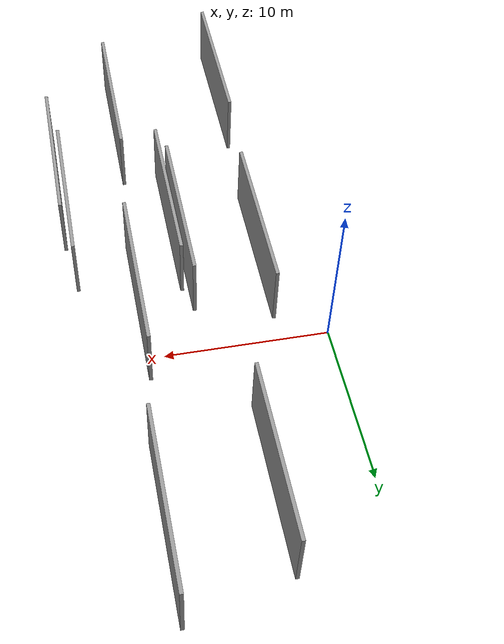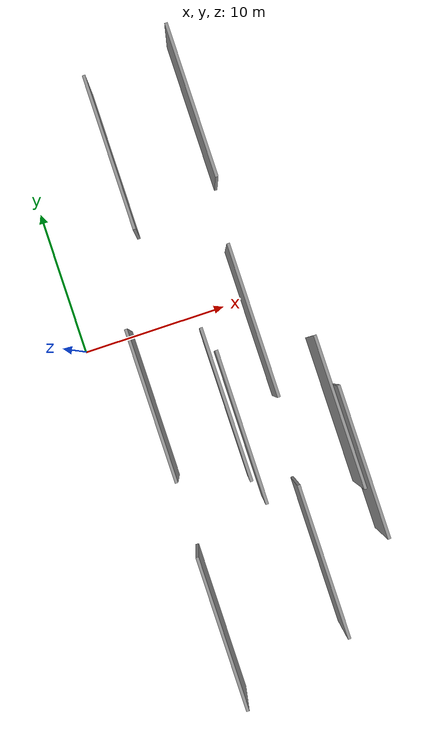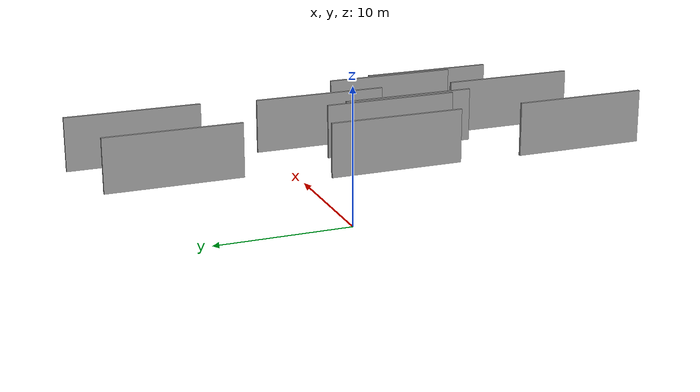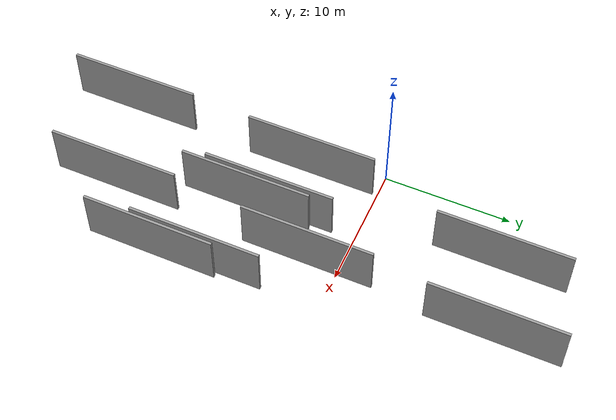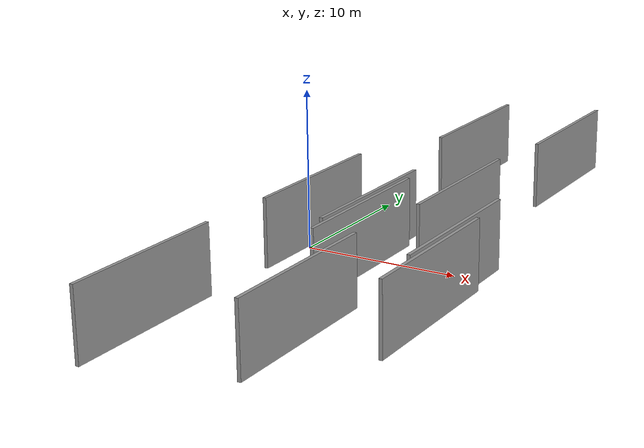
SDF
<sdf version="1.6">
 <world name="default">
  <scene>
   <sky><clouds><speed>12</speed></clouds></sky>
   <ambient>0.4 0.4 0.4 1</ambient>
   <background>0.7 0.7 0.7 1</background>
   <shadows>1</shadows>
  </scene>
  <gravity>0 0 -9.8066</gravity>
  <magnetic_field>6e-06 2.3e-05 -4.2e-05</magnetic_field>
  <physics default="0" name="default_physics" type="ode">
   <ode>
    <solver>
     <type>quick</type>
     <iters>10</iters>
     <sor>1.0</sor>
     <use_dynamic_moi_rescaling>0</use_dynamic_moi_rescaling>
    </solver>
    <constraints>
     <cfm>0</cfm>
     <erp>0.2</erp>
     <contact_max_correcting_vel>100</contact_max_correcting_vel>
     <contact_surface_layer>0.001</contact_surface_layer>
    </constraints>
   </ode>
   <max_step_size>0.004</max_step_size>
   <real_time_factor>1</real_time_factor>
   <real_time_update_rate>250</real_time_update_rate>
  </physics>
  <light name="sun" type="directional">
   <pose>0 0 10 0 0 0</pose>
   <diffuse>0.8 0.8 0.8 1</diffuse>
   <specular>0.2 0.2 0.2 1</specular>
   <attenuation>
    <range>1000</range>
    <constant>0.9</constant>
    <linear>0.01</linear>
    <quadratic>0.001</quadratic>
   </attenuation>
   <direction>-0.5 0.1 -0.9</direction>
  </light>
  <model name="grey_wall_1">
   <static>1</static>
   <pose>8.4379 -7.7824 2.5 0.000000 0.000000 1.570796</pose>
   <link name="link">
    <pose>0 0 2.00 0 0 0</pose>
    <collision name="collision"><geometry><box><size>10.00 0.2 4.00</size></box></geometry></collision>
    <visual name="visual">
     <cast_shadows>0</cast_shadows>
     <geometry><box><size>10.00 0.2 4.00</size></box></geometry>
     <material>
      <script>
       <uri>model://grey_wall/materials/scripts</uri>
       <uri>model://grey_wall/materials/textures</uri>
       <name>vrc/grey_wall</name>
      </script>
     </material>
    </visual>
   </link>
  </model>
  <model name="grey_wall_2">
   <static>1</static>
   <pose>14.4965 -8.8047 2.5 0.000000 0.000000 1.570796</pose>
   <link name="link">
    <pose>0 0 2.00 0 0 0</pose>
    <collision name="collision"><geometry><box><size>10.00 0.2 4.00</size></box></geometry></collision>
    <visual name="visual">
     <cast_shadows>0</cast_shadows>
     <geometry><box><size>10.00 0.2 4.00</size></box></geometry>
     <material>
      <script>
       <uri>model://grey_wall/materials/scripts</uri>
       <uri>model://grey_wall/materials/textures</uri>
       <name>vrc/grey_wall</name>
      </script>
     </material>
    </visual>
   </link>
  </model>
  <model name="grey_wall_3">
   <static>1</static>
   <pose>14.9204 -12.1886 2.5 0.000000 0.000000 1.570796</pose>
   <link name="link">
    <pose>0 0 2.00 0 0 0</pose>
    <collision name="collision"><geometry><box><size>10.00 0.2 4.00</size></box></geometry></collision>
    <visual name="visual">
     <cast_shadows>0</cast_shadows>
     <geometry><box><size>10.00 0.2 4.00</size></box></geometry>
     <material>
      <script>
       <uri>model://grey_wall/materials/scripts</uri>
       <uri>model://grey_wall/materials/textures</uri>
       <name>vrc/grey_wall</name>
      </script>
     </material>
    </visual>
   </link>
  </model>
  <model name="grey_wall_4">
   <static>1</static>
   <pose>7.9700 -6.1610 2.5 0.000000 0.000000 1.570796</pose>
   <link name="link">
    <pose>0 0 2.00 0 0 0</pose>
    <collision name="collision"><geometry><box><size>10.00 0.2 4.00</size></box></geometry></collision>
    <visual name="visual">
     <cast_shadows>0</cast_shadows>
     <geometry><box><size>10.00 0.2 4.00</size></box></geometry>
     <material>
      <script>
       <uri>model://grey_wall/materials/scripts</uri>
       <uri>model://grey_wall/materials/textures</uri>
       <name>vrc/grey_wall</name>
      </script>
     </material>
    </visual>
   </link>
  </model>
  <model name="grey_wall_5">
   <static>1</static>
   <pose>11.1988 -1.7500 2.5 0.000000 0.000000 1.570796</pose>
   <link name="link">
    <pose>0 0 2.00 0 0 0</pose>
    <collision name="collision"><geometry><box><size>10.00 0.2 4.00</size></box></geometry></collision>
    <visual name="visual">
     <cast_shadows>0</cast_shadows>
     <geometry><box><size>10.00 0.2 4.00</size></box></geometry>
     <material>
      <script>
       <uri>model://grey_wall/materials/scripts</uri>
       <uri>model://grey_wall/materials/textures</uri>
       <name>vrc/grey_wall</name>
      </script>
     </material>
    </visual>
   </link>
  </model>
  <model name="grey_wall_6">
   <static>1</static>
   <pose>3.5383 -4.7994 2.5 0.000000 0.000000 1.570796</pose>
   <link name="link">
    <pose>0 0 2.00 0 0 0</pose>
    <collision name="collision"><geometry><box><size>10.00 0.2 4.00</size></box></geometry></collision>
    <visual name="visual">
     <cast_shadows>0</cast_shadows>
     <geometry><box><size>10.00 0.2 4.00</size></box></geometry>
     <material>
      <script>
       <uri>model://grey_wall/materials/scripts</uri>
       <uri>model://grey_wall/materials/textures</uri>
       <name>vrc/grey_wall</name>
      </script>
     </material>
    </visual>
   </link>
  </model>
  <model name="grey_wall_7">
   <static>1</static>
   <pose>10.6508 -17.2697 2.5 0.000000 0.000000 1.570796</pose>
   <link name="link">
    <pose>0 0 2.00 0 0 0</pose>
    <collision name="collision"><geometry><box><size>10.00 0.2 4.00</size></box></geometry></collision>
    <visual name="visual">
     <cast_shadows>0</cast_shadows>
     <geometry><box><size>10.00 0.2 4.00</size></box></geometry>
     <material>
      <script>
       <uri>model://grey_wall/materials/scripts</uri>
       <uri>model://grey_wall/materials/textures</uri>
       <name>vrc/grey_wall</name>
      </script>
     </material>
    </visual>
   </link>
  </model>
  <model name="grey_wall_8">
   <static>1</static>
   <pose>5.9852 10.8759 2.5 0.000000 0.000000 1.570796</pose>
   <link name="link">
    <pose>0 0 2.00 0 0 0</pose>
    <collision name="collision"><geometry><box><size>10.00 0.2 4.00</size></box></geometry></collision>
    <visual name="visual">
     <cast_shadows>0</cast_shadows>
     <geometry><box><size>10.00 0.2 4.00</size></box></geometry>
     <material>
      <script>
       <uri>model://grey_wall/materials/scripts</uri>
       <uri>model://grey_wall/materials/textures</uri>
       <name>vrc/grey_wall</name>
      </script>
     </material>
    </visual>
   </link>
  </model>
  <model name="grey_wall_9">
   <static>1</static>
   <pose>11.8253 12.3489 2.5 0.000000 0.000000 1.570796</pose>
   <link name="link">
    <pose>0 0 2.00 0 0 0</pose>
    <collision name="collision"><geometry><box><size>10.00 0.2 4.00</size></box></geometry></collision>
    <visual name="visual">
     <cast_shadows>0</cast_shadows>
     <geometry><box><size>10.00 0.2 4.00</size></box></geometry>
     <material>
      <script>
       <uri>model://grey_wall/materials/scripts</uri>
       <uri>model://grey_wall/materials/textures</uri>
       <name>vrc/grey_wall</name>
      </script>
     </material>
    </visual>
   </link>
  </model>
  <model name="grey_wall_10">
   <static>1</static>
   <pose>3.3009 -19.5297 2.5 0.000000 0.000000 1.570796</pose>
   <link name="link">
    <pose>0 0 2.00 0 0 0</pose>
    <collision name="collision"><geometry><box><size>10.00 0.2 4.00</size></box></geometry></collision>
    <visual name="visual">
     <cast_shadows>0</cast_shadows>
     <geometry><box><size>10.00 0.2 4.00</size></box></geometry>
     <material>
      <script>
       <uri>model://grey_wall/materials/scripts</uri>
       <uri>model://grey_wall/materials/textures</uri>
       <name>vrc/grey_wall</name>
      </script>
     </material>
    </visual>
   </link>
  </model>
 </world>
</sdf>
